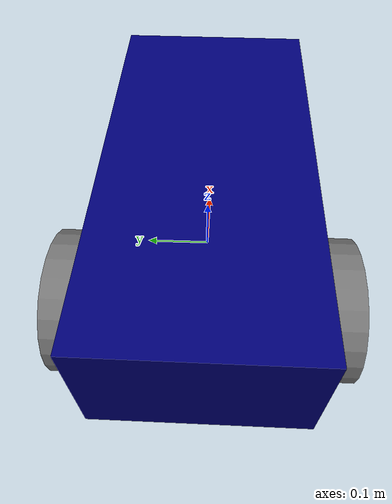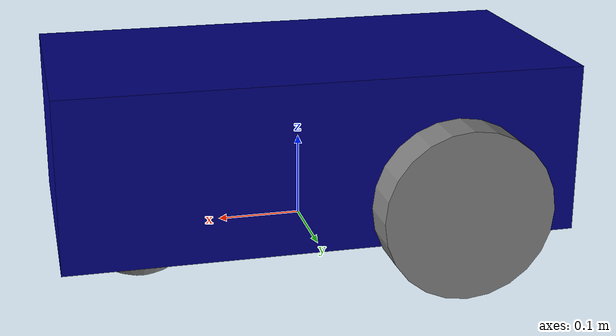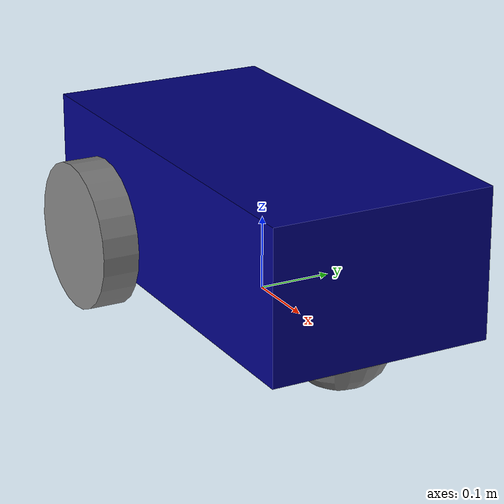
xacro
<?xml version="1.0"?>
<robot name="my_robot" xmlns:xacro="http://www.ros.org/wiki/xacro">
  <xacro:include filename="properties.urdf.xacro" />
  <xacro:property name="l" value="0.6" />
  <xacro:property name="b" value="0.2" />

  <link name="base_footprint">
  </link>

  <link name="base_link">
    <visual>
      <geometry>
        <box size="${l} ${l/2} ${l/3}" />
      </geometry>
      <origin xyz="0 0 ${b/2}" rpy="0 0 0" />
      <material name="blue" />
    </visual>
	 <collision>
	 <geometry>
        <box size="${l} ${l/2} ${l/3}" />
      </geometry>
      <origin xyz="0 0 ${b/2}" rpy="0 0 0" />

	  </collision>
	<xacro:box_in m="5.0" l="${l}" w="${l/2}" h="${l/3}" xyz="0 0 ${b/2}" rpy="0 0 0"/>
  </link>

  <xacro:macro name="wheel" params="prefix">
    <link name="${prefix}_link">
      <visual>
        <geometry>
          <cylinder radius="0.1" length="0.05" />
        </geometry>
        <origin xyz="0 0 0" rpy="${pi / 2} 0 0" />
        <material name="grey" />
      </visual>
	  <collision>
	    <geometry>
          <cylinder radius="0.1" length="0.05" />
        </geometry>
        <origin xyz="0 0 0" rpy="${pi / 2} 0 0" />
	  </collision>
	   <xacro:wheel_in m="1.0" r="0.1" h="0.05" xyz="0 0 0" rpy="${pi / 2} 0 0" />
    </link>
  </xacro:macro>

  <xacro:wheel prefix="right" />
  <xacro:wheel prefix="left" />

  <link name="front">
    <visual>
      <geometry>
        <sphere radius="0.07" />
      </geometry>
      <origin xyz="0 0 0" rpy="0 0 0" />
      <material name="grey" />
    </visual>
	 <collision>
	 <geometry>
        <sphere radius="0.07" />
      </geometry>
      <origin xyz="0 0 0" rpy="0 0 0" />

	  </collision>
	<xacro:front m="0.5" r="0.07" xyz="0 0 0" rpy="0 0 0" />
  </link>

  <joint name="right" type="continuous">
    <parent link="base_link" />
    <child link="right_link" />
    <origin xyz="${-l/4} -0.18 0.05" rpy="0 0 0" />
    <axis xyz="0 1 0" />
  </joint>

  <joint name="left" type="continuous">
    <parent link="base_link" />
    <child link="left_link" />
    <origin xyz="${-l/4} 0.18 0.05" rpy="0 0 0" />
    <axis xyz="0 1 0" />
  </joint>

  <joint name="front1" type="revolute">
    <parent link="base_link" />
    <child link="front" />
    <origin xyz="${l/3} 0 0" rpy="0 0 0" />
    <axis xyz="1 1 1" />
    <limit effort="10.0" lower="-1.57" upper="1.57" velocity="1.0" />
  </joint>

  <joint name="ground" type="fixed">
    <parent link="base_footprint" />
    <child link="base_link" />
    <origin xyz="0 0 0.01" rpy="0 0 0" />
  </joint>
</robot>

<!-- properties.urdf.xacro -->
<robot xmlns:xacro="http://www.ros.org/wiki/xacro">

  <!-- Box Inertia Macro -->
  <xacro:macro name="box_in" params="m l w h xyz rpy">
    <inertial>
      <mass value="${m}"/>
      <origin xyz="${xyz}" rpy="${rpy}" />
      <inertia ixx="${m/12*(h*h + w*w)}" ixy="0.0" ixz="0.0" iyy="${m/12*(l*l + h*h)}" iyz="0.0" izz="${m/12*(l*l + w*w)}"/>
    </inertial>
  </xacro:macro>

  <!-- Wheel Inertia Macro -->
  <xacro:macro name="wheel_in" params="m r h xyz rpy">
    <inertial>
      <mass value="${m}"/>
      <origin xyz="${xyz}" rpy="${rpy}" />
      <inertia ixx="${m/12*(3*r*r + h*h)}" ixy="0.0" ixz="0.0" iyy="${m/12*(3*r*r + h*h)}" iyz="0.0" izz="${m/2*r*r}"/>
    </inertial>
  </xacro:macro>

  <!-- front Inertia Macro -->
<xacro:macro name="front" params="m r xyz rpy">
  <inertial>
    <mass value="${m}"/>
    <origin xyz="${xyz}" rpy="${rpy}" />
    <inertia ixx="${(2*m/5)*(r*r)}" ixy="0.0" ixz="0.0" iyy="${(2*m/5)*(r*r)}" iyz="0.0" izz="${(2*m/5)*(r*r)}"/>
  </inertial>
</xacro:macro>

  <!-- Materials -->
  <material name="blue">
    <color rgba="0 0 0.5 1" />
  </material>

  <material name="grey">
    <color rgba="0.5 0.5 0.5 1" />
  </material>

</robot>
